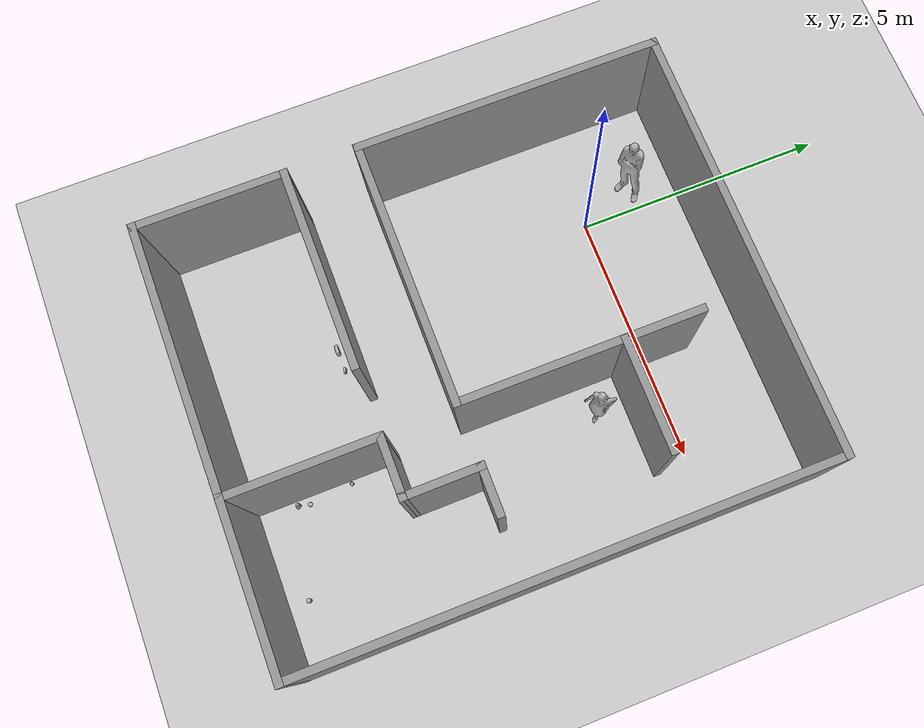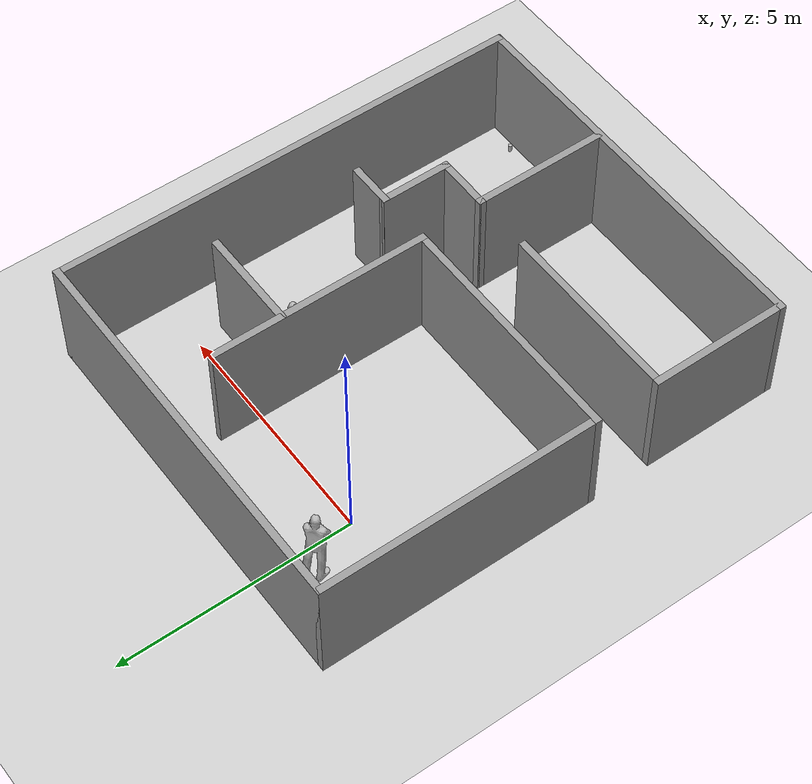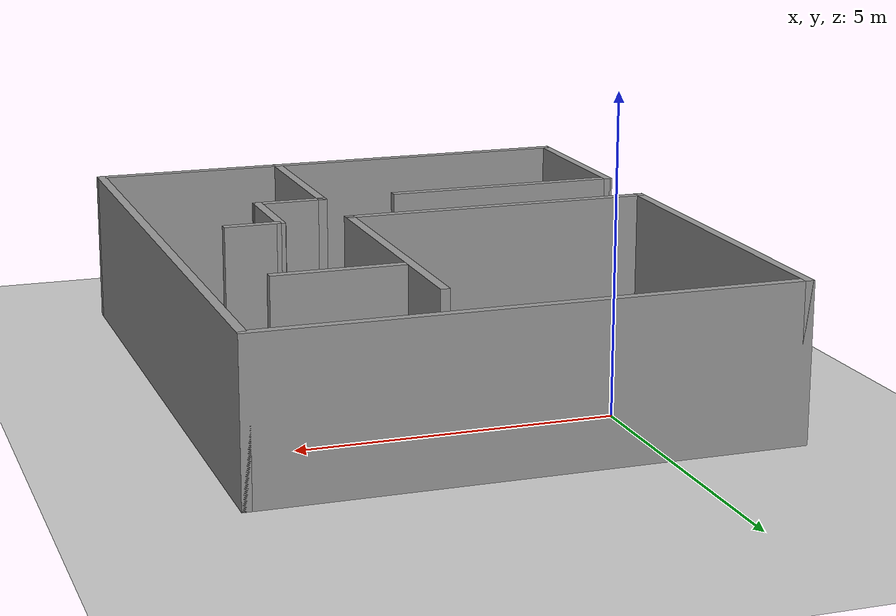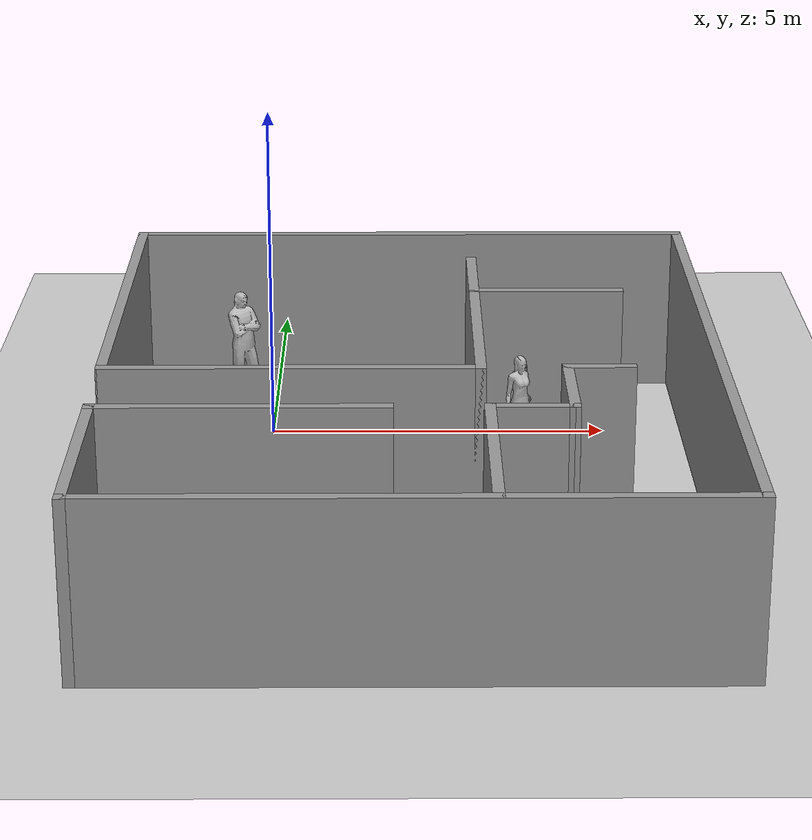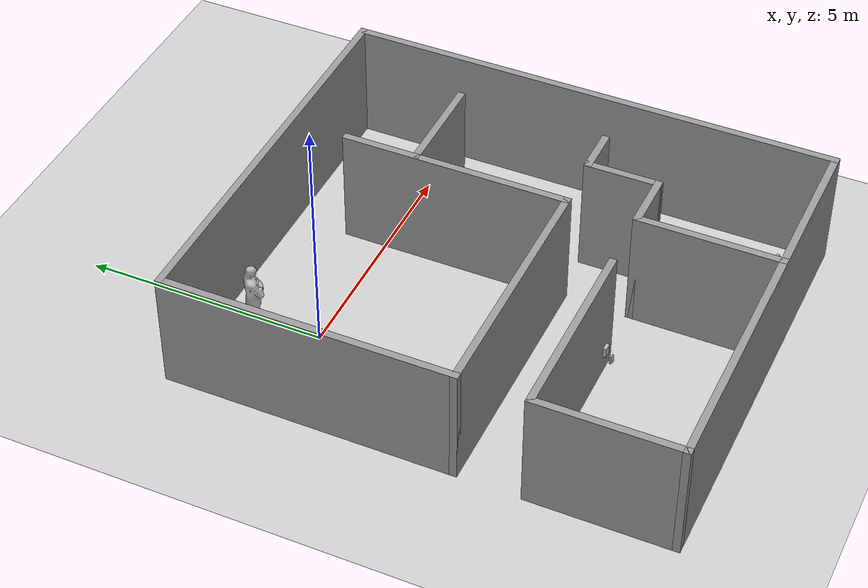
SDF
<sdf version="1.6">
 <world name="default">
  <light name="sun" type="directional">
   <pose>0 0 10 0 -0 0</pose>
   <diffuse>0.8 0.8 0.8 1</diffuse>
   <specular>0.1 0.1 0.1 1</specular>
   <attenuation>
    <range>1000</range>
    <constant>0.9</constant>
    <linear>0.01</linear>
    <quadratic>0.001</quadratic>
   </attenuation>
   <direction>-0.5 0.5 -1</direction>
  </light>
  <model name="ground_plane">
   <static>1</static>
   <link name="link">
    <collision name="collision">
     <geometry><plane><normal>0 0 1</normal><size>100 100</size></plane></geometry>
     <surface><friction><ode><mu>100</mu><mu2>50</mu2></ode></friction></surface>
    </collision>
    <visual name="visual">
     <cast_shadows>0</cast_shadows>
     <geometry><plane><normal>0 0 1</normal><size>100 100</size></plane></geometry>
     <material>
      <script><uri>file://media/materials/scripts/gazebo.material</uri><name>Gazebo/Grey</name></script>
     </material>
    </visual>
   </link>
  </model>
  <gravity>0 0 -9.8</gravity>
  <magnetic_field>6e-06 2.3e-05 -4.2e-05</magnetic_field>
  <atmosphere type="adiabatic"/>
  <physics name="default_physics" default="0" type="ode">
   <max_step_size>0.001</max_step_size>
   <real_time_factor>1</real_time_factor>
   <real_time_update_rate>1000</real_time_update_rate>
  </physics>
  <scene><ambient>0.4 0.4 0.4 1</ambient><background>0.7 0.7 0.7 1</background><shadows>1</shadows></scene>
  <spherical_coordinates>
   <surface_model>EARTH_WGS84</surface_model>
   <latitude_deg>0</latitude_deg>
   <longitude_deg>0</longitude_deg>
   <elevation>0</elevation>
   <heading_deg>0</heading_deg>
  </spherical_coordinates>
  <model name="flat_5">
   <pose>2.075 -2.98 0 0 -0 0</pose>
   <link name="Wall_0">
    <collision name="Wall_0_Collision">
     <geometry><box><size>6 0.15 2.5</size></box></geometry>
     <pose>0 0 1.25 0 -0 0</pose>
    </collision>
    <visual name="Wall_0_Visual">
     <pose>0 0 1.25 0 -0 0</pose>
     <geometry><box><size>6 0.15 2.5</size></box></geometry>
     <material>
      <script><uri>file://media/materials/scripts/gazebo.material</uri><name>Gazebo/Grey</name></script>
      <ambient>1 1 1 1</ambient>
     </material>
    </visual>
    <pose>-4.175 2.125 0 0 -0 1.5708</pose>
   </link>
   <link name="Wall_11">
    <collision name="Wall_11_Collision">
     <geometry><box><size>3 0.15 2.5</size></box></geometry>
     <pose>0 0 1.25 0 -0 0</pose>
    </collision>
    <visual name="Wall_11_Visual">
     <pose>0 0 1.25 0 -0 0</pose>
     <geometry><box><size>3 0.15 2.5</size></box></geometry>
     <material>
      <script><uri>file://media/materials/scripts/gazebo.material</uri><name>Gazebo/Grey</name></script>
      <ambient>1 1 1 1</ambient>
     </material>
    </visual>
    <pose>0.997945 -3.62329 0 0 -0 1.5708</pose>
   </link>
   <link name="Wall_13">
    <collision name="Wall_13_Collision">
     <geometry><box><size>5.25 0.15 2.5</size></box></geometry>
     <pose>0 0 1.25 0 -0 0</pose>
    </collision>
    <visual name="Wall_13_Visual">
     <pose>0 0 1.25 0 -0 0</pose>
     <geometry><box><size>5.25 0.15 2.5</size></box></geometry>
     <material>
      <script><uri>file://media/materials/scripts/gazebo.material</uri><name>Gazebo/Grey</name></script>
      <ambient>1 1 1 1</ambient>
     </material>
    </visual>
    <pose>-1.625 -0.8 0 0 -0 0</pose>
   </link>
   <link name="Wall_14">
    <collision name="Wall_14_Collision">
     <geometry><box><size>4.75 0.15 2.5</size></box></geometry>
     <pose>0 0 1.25 0 -0 0</pose>
    </collision>
    <visual name="Wall_14_Visual">
     <pose>0 0 1.25 0 -0 0</pose>
     <geometry><box><size>4.75 0.15 2.5</size></box></geometry>
     <material>
      <script><uri>file://media/materials/scripts/gazebo.material</uri><name>Gazebo/Grey</name></script>
      <ambient>1 1 1 1</ambient>
     </material>
    </visual>
    <pose>0.925 1.5 0 0 -0 1.5708</pose>
   </link>
   <link name="Wall_16">
    <collision name="Wall_16_Collision">
     <geometry><box><size>2.25 0.15 2.5</size></box></geometry>
     <pose>0 0 1.25 0 -0 0</pose>
    </collision>
    <visual name="Wall_16_Visual">
     <pose>0 0 1.25 0 -0 0</pose>
     <geometry><box><size>2.25 0.15 2.5</size></box></geometry>
     <material>
      <script><uri>file://media/materials/scripts/gazebo.material</uri><name>Gazebo/Grey</name></script>
      <ambient>1 1 1 1</ambient>
     </material>
    </visual>
    <pose>1.98224 2.33642 0 0 -0 0</pose>
   </link>
   <link name="Wall_2">
    <collision name="Wall_2_Collision">
     <geometry><box><size>8.5 0.15 2.5</size></box></geometry>
     <pose>0 0 1.25 0 -0 0</pose>
    </collision>
    <visual name="Wall_2_Visual">
     <pose>0 0 1.25 0 -0 0</pose>
     <geometry><box><size>8.5 0.15 2.5</size></box></geometry>
     <material>
      <script><uri>file://media/materials/scripts/gazebo.material</uri><name>Gazebo/Grey</name></script>
      <ambient>1 1 1 1</ambient>
     </material>
    </visual>
    <pose>0 5.05 0 0 -0 0</pose>
   </link>
   <link name="Wall_20">
    <collision name="Wall_20_Collision">
     <geometry><box><size>1.25 0.15 2.5</size></box></geometry>
     <pose>0 0 1.25 0 -0 0</pose>
    </collision>
    <visual name="Wall_20_Visual">
     <pose>0 0 1.25 0 -0 0</pose>
     <geometry><box><size>1.25 0.15 2.5</size></box></geometry>
     <material>
      <script><uri>file://media/materials/scripts/gazebo.material</uri><name>Gazebo/Grey</name></script>
      <ambient>1 1 1 1</ambient>
     </material>
    </visual>
    <pose>1.54794 -2.19829 0 0 -0 0</pose>
   </link>
   <link name="Wall_21">
    <collision name="Wall_21_Collision">
     <geometry><box><size>1.56716 0.15 2.5</size></box></geometry>
     <pose>0 0 1.25 0 -0 0</pose>
    </collision>
    <visual name="Wall_21_Visual">
     <pose>0 0 1.25 0 -0 0</pose>
     <geometry><box><size>1.56716 0.15 2.5</size></box></geometry>
     <material>
      <script><uri>file://media/materials/scripts/gazebo.material</uri><name>Gazebo/Grey</name></script>
      <ambient>1 1 1 1</ambient>
     </material>
    </visual>
    <pose>2.09543 -1.48972 0 0 -0 1.57435</pose>
   </link>
   <link name="Wall_22">
    <collision name="Wall_22_Collision">
     <geometry><box><size>1 0.15 2.5</size></box></geometry>
     <pose>0 0 1.25 0 -0 0</pose>
    </collision>
    <visual name="Wall_22_Visual">
     <pose>0 0 1.25 0 -0 0</pose>
     <geometry><box><size>1 0.15 2.5</size></box></geometry>
     <material>
      <script><uri>file://media/materials/scripts/gazebo.material</uri><name>Gazebo/Grey</name></script>
      <ambient>1 1 1 1</ambient>
     </material>
    </visual>
    <pose>2.52363 -0.781148 0 0 -0 0</pose>
   </link>
   <link name="Wall_3">
    <collision name="Wall_3_Collision">
     <geometry><box><size>10.25 0.15 2.5</size></box></geometry>
     <pose>0 0 1.25 0 -0 0</pose>
    </collision>
    <visual name="Wall_3_Visual">
     <pose>0 0 1.25 0 -0 0</pose>
     <geometry><box><size>10.25 0.15 2.5</size></box></geometry>
     <material>
      <script><uri>file://media/materials/scripts/gazebo.material</uri><name>Gazebo/Grey</name></script>
      <ambient>1 1 1 1</ambient>
     </material>
    </visual>
    <pose>4.175 0 0 0 0 -1.5708</pose>
   </link>
   <link name="Wall_5">
    <collision name="Wall_5_Collision">
     <geometry><box><size>8.5 0.15 2.5</size></box></geometry>
     <pose>0 0 1.25 0 -0 0</pose>
    </collision>
    <visual name="Wall_5_Visual">
     <pose>0 0 1.25 0 -0 0</pose>
     <geometry><box><size>8.5 0.15 2.5</size></box></geometry>
     <material>
      <script><uri>file://media/materials/scripts/gazebo.material</uri><name>Gazebo/Grey</name></script>
      <ambient>1 1 1 1</ambient>
     </material>
    </visual>
    <pose>0 -5.05 0 0 -0 3.14159</pose>
   </link>
   <link name="Wall_6">
    <collision name="Wall_6_Collision">
     <geometry><box><size>3 0.15 2.5</size></box></geometry>
     <pose>0 0 1.25 0 -0 0</pose>
    </collision>
    <visual name="Wall_6_Visual">
     <pose>0 0 1.25 0 -0 0</pose>
     <geometry><box><size>3 0.15 2.5</size></box></geometry>
     <material>
      <script><uri>file://media/materials/scripts/gazebo.material</uri><name>Gazebo/Grey</name></script>
      <ambient>1 1 1 1</ambient>
     </material>
    </visual>
    <pose>-4.175 -3.625 0 0 -0 1.5708</pose>
   </link>
   <link name="Wall_7">
    <collision name="Wall_7_Collision">
     <geometry><box><size>4 0.15 2.5</size></box></geometry>
     <pose>0 0 1.25 0 -0 0</pose>
    </collision>
    <visual name="Wall_7_Visual">
     <pose>0 0 1.25 0 -0 0</pose>
     <geometry><box><size>4 0.15 2.5</size></box></geometry>
     <material>
      <script><uri>file://media/materials/scripts/gazebo.material</uri><name>Gazebo/Grey</name></script>
      <ambient>1 1 1 1</ambient>
     </material>
    </visual>
    <pose>-2.25 -2.2 0 0 -0 0</pose>
   </link>
   <static>1</static>
  </model>
  <model name="citizen_extras_male_03">
   <static>1</static>
   <link name="link">
    <inertial>
     <mass>20</mass>
     <inertia><ixx>0.0</ixx><ixy>0.0</ixy><ixz>0.0</ixz><iyy>0.0</iyy><iyz>0.0</iyz><izz>0.0</izz></inertia>
    </inertial>
    <collision name="collision">
     <pose>-0.4 1.11 0 0 0 0.74</pose>
     <geometry><mesh><uri>model://citizen_extras_male_03/meshes/mesh.dae</uri></mesh></geometry>
    </collision>
    <visual name="visual">
     <pose>-0.4 1.11 0 0 0 0.74</pose>
     <geometry><mesh><uri>model://citizen_extras_male_03/meshes/mesh.dae</uri></mesh></geometry>
    </visual>
   </link>
  </model>
  <model name="ycb-cracker">
   <link name="link_0">
    <pose>0.96 -5.47 0.95 0 -0 -1.6</pose>
    <inertial>
     <mass>1</mass>
     <inertia>
      <ixx>0.166667</ixx>
      <ixy>0</ixy>
      <ixz>0</ixz>
      <iyy>0.166667</iyy>
      <iyz>0</iyz>
      <izz>0.166667</izz>
     </inertia>
    </inertial>
    <visual name="visual">
     <geometry><mesh><uri>model://ycb-cracker/meshes/textured.dae</uri><scale>1 1 1</scale></mesh></geometry>
    </visual>
    <collision name="collision">
     <geometry><mesh><uri>model://ycb-cracker/meshes/textured.dae</uri></mesh></geometry>
     <surface>
      <friction>
       <ode><mu>1</mu><mu2>1</mu2><fdir1>0 0 0</fdir1><slip1>0</slip1><slip2>0</slip2></ode>
       <torsional>
        <coefficient>1</coefficient>
        <patch_radius>0</patch_radius>
        <surface_radius>0</surface_radius>
        <use_patch_radius>1</use_patch_radius>
        <ode><slip>0</slip></ode>
       </torsional>
      </friction>
      <bounce><restitution_coefficient>0</restitution_coefficient><threshold>1e+06</threshold></bounce>
      <contact>
       <collide_without_contact>0</collide_without_contact>
       <collide_without_contact_bitmask>1</collide_without_contact_bitmask>
       <collide_bitmask>1</collide_bitmask>
       <ode>
        <soft_cfm>0</soft_cfm>
        <soft_erp>0.2</soft_erp>
        <kp>1e+13</kp>
        <kd>1</kd>
        <max_vel>0.01</max_vel>
        <min_depth>0</min_depth>
       </ode>
       <bullet>
        <split_impulse>1</split_impulse>
        <split_impulse_penetration_threshold>-0.01</split_impulse_penetration_threshold>
        <soft_cfm>0</soft_cfm>
        <soft_erp>0.2</soft_erp>
        <kp>1e+13</kp>
        <kd>1</kd>
       </bullet>
      </contact>
     </surface>
    </collision>
   </link>
   <static>1</static>
  </model>
  <model name="ycb-sugar">
   <link name="link_0">
    <pose>1.24 -5.49 0.5 0 -0 -1.85</pose>
    <inertial>
     <mass>1</mass>
     <inertia>
      <ixx>0.166667</ixx>
      <ixy>0</ixy>
      <ixz>0</ixz>
      <iyy>0.166667</iyy>
      <iyz>0</iyz>
      <izz>0.166667</izz>
     </inertia>
    </inertial>
    <visual name="visual">
     <geometry><mesh><uri>model://ycb-sugar/meshes/textured.dae</uri><scale>1 1 1</scale></mesh></geometry>
    </visual>
    <collision name="collision">
     <geometry><mesh><uri>model://ycb-sugar/meshes/textured.dae</uri></mesh></geometry>
     <surface>
      <friction>
       <ode><mu>1</mu><mu2>1</mu2><fdir1>0 0 0</fdir1><slip1>0</slip1><slip2>0</slip2></ode>
       <torsional>
        <coefficient>1</coefficient>
        <patch_radius>0</patch_radius>
        <surface_radius>0</surface_radius>
        <use_patch_radius>1</use_patch_radius>
        <ode><slip>0</slip></ode>
       </torsional>
      </friction>
      <bounce><restitution_coefficient>0</restitution_coefficient><threshold>1e+06</threshold></bounce>
      <contact>
       <collide_without_contact>0</collide_without_contact>
       <collide_without_contact_bitmask>1</collide_without_contact_bitmask>
       <collide_bitmask>1</collide_bitmask>
       <ode>
        <soft_cfm>0</soft_cfm>
        <soft_erp>0.2</soft_erp>
        <kp>1e+13</kp>
        <kd>1</kd>
        <max_vel>0.01</max_vel>
        <min_depth>0</min_depth>
       </ode>
       <bullet>
        <split_impulse>1</split_impulse>
        <split_impulse_penetration_threshold>-0.01</split_impulse_penetration_threshold>
        <soft_cfm>0</soft_cfm>
        <soft_erp>0.2</soft_erp>
        <kp>1e+13</kp>
        <kd>1</kd>
       </bullet>
      </contact>
     </surface>
    </collision>
   </link>
   <static>1</static>
  </model>
  <model name="ycb-tuna">
   <link name="link_3">
    <pose>3.41 -6.89 0.508 0 0 0</pose>
    <inertial>
     <mass>1</mass>
     <inertia>
      <ixx>0.166667</ixx>
      <ixy>0</ixy>
      <ixz>0</ixz>
      <iyy>0.166667</iyy>
      <iyz>0</iyz>
      <izz>0.166667</izz>
     </inertia>
    </inertial>
    <visual name="visual">
     <geometry><mesh><uri>model://ycb-tuna/meshes/textured.dae</uri><scale>1 1 1</scale></mesh></geometry>
    </visual>
    <collision name="collision">
     <geometry><mesh><uri>model://ycb-tuna/meshes/textured.dae</uri></mesh></geometry>
     <surface>
      <friction>
       <ode><mu>1</mu><mu2>1</mu2><fdir1>0 0 0</fdir1><slip1>0</slip1><slip2>0</slip2></ode>
       <torsional>
        <coefficient>1</coefficient>
        <patch_radius>0</patch_radius>
        <surface_radius>0</surface_radius>
        <use_patch_radius>1</use_patch_radius>
        <ode><slip>0</slip></ode>
       </torsional>
      </friction>
      <bounce><restitution_coefficient>0</restitution_coefficient><threshold>1e+06</threshold></bounce>
      <contact>
       <collide_without_contact>0</collide_without_contact>
       <collide_without_contact_bitmask>1</collide_without_contact_bitmask>
       <collide_bitmask>1</collide_bitmask>
       <ode>
        <soft_cfm>0</soft_cfm>
        <soft_erp>0.2</soft_erp>
        <kp>1e+13</kp>
        <kd>1</kd>
        <max_vel>0.01</max_vel>
        <min_depth>0</min_depth>
       </ode>
       <bullet>
        <split_impulse>1</split_impulse>
        <split_impulse_penetration_threshold>-0.01</split_impulse_penetration_threshold>
        <soft_cfm>0</soft_cfm>
        <soft_erp>0.2</soft_erp>
        <kp>1e+13</kp>
        <kd>1</kd>
       </bullet>
      </contact>
     </surface>
    </collision>
   </link>
   <static>1</static>
  </model>
  <model name="ycb-bleach">
   <link name="link_8">
    <pose>3.42 -7.03 0.952 0 -0 2.2</pose>
    <inertial>
     <mass>1</mass>
     <inertia>
      <ixx>0.166667</ixx>
      <ixy>0</ixy>
      <ixz>0</ixz>
      <iyy>0.166667</iyy>
      <iyz>0</iyz>
      <izz>0.166667</izz>
     </inertia>
    </inertial>
    <visual name="visual">
     <geometry><mesh><uri>model://ycb-bleach/meshes/textured.dae</uri><scale>1 1 1</scale></mesh></geometry>
    </visual>
    <collision name="collision">
     <geometry><mesh><uri>/model://ycb-bleach/meshes/textured.dae</uri></mesh></geometry>
     <surface>
      <friction>
       <ode><mu>1</mu><mu2>1</mu2><fdir1>0 0 0</fdir1><slip1>0</slip1><slip2>0</slip2></ode>
       <torsional>
        <coefficient>1</coefficient>
        <patch_radius>0</patch_radius>
        <surface_radius>0</surface_radius>
        <use_patch_radius>1</use_patch_radius>
        <ode><slip>0</slip></ode>
       </torsional>
      </friction>
      <bounce><restitution_coefficient>0</restitution_coefficient><threshold>1e+06</threshold></bounce>
      <contact>
       <collide_without_contact>0</collide_without_contact>
       <collide_without_contact_bitmask>1</collide_without_contact_bitmask>
       <collide_bitmask>1</collide_bitmask>
       <ode>
        <soft_cfm>0</soft_cfm>
        <soft_erp>0.2</soft_erp>
        <kp>1e+13</kp>
        <kd>1</kd>
        <max_vel>0.01</max_vel>
        <min_depth>0</min_depth>
       </ode>
       <bullet>
        <split_impulse>1</split_impulse>
        <split_impulse_penetration_threshold>-0.01</split_impulse_penetration_threshold>
        <soft_cfm>0</soft_cfm>
        <soft_erp>0.2</soft_erp>
        <kp>1e+13</kp>
        <kd>1</kd>
       </bullet>
      </contact>
     </surface>
    </collision>
   </link>
   <static>1</static>
  </model>
  <model name="citizen_extras_female_02">
   <static>1</static>
   <link name="link">
    <inertial>
     <mass>20</mass>
     <inertia><ixx>0.0</ixx><ixy>0.0</ixy><ixz>0.0</ixz><iyy>0.0</iyy><iyz>0.0</iyz><izz>0.0</izz></inertia>
    </inertial>
    <collision name="collision">
     <pose>3.6 -1.26 0 0 0 0.71</pose>
     <geometry><mesh><uri>model://citizen_extras_female_02/meshes/mesh.dae</uri></mesh></geometry>
    </collision>
    <visual name="visual">
     <pose>3.6 -1.26 0 0 0 0.71</pose>
     <geometry><mesh><uri>model://citizen_extras_female_02/meshes/mesh.dae</uri></mesh></geometry>
    </visual>
   </link>
  </model>
  <model name="cocacola">
   <static>1</static>
   <link name="link">
    <inertial>
     <mass>0.25</mass>
     <inertia>
      <ixx>0.000000</ixx>
      <ixy>0.000000</ixy>
      <ixz>0.000000</ixz>
      <iyy>0.000000</iyy>
      <iyz>0.000000</iyz>
      <izz>0.000000</izz>
     </inertia>
    </inertial>
    <collision name="collision">
     <pose>5.04 -7.45 0.73 3.1415 0 0</pose>
     <geometry><cylinder><radius>0.04</radius><length>0.15</length></cylinder></geometry>
    </collision>
    <visual name="visual">
     <pose>5.04 -7.45 0.73 3.1415 0 0</pose>
     <geometry><cylinder><radius>0.04</radius><length>0.15</length></cylinder></geometry>
     <material>
      <script>
       <uri>model://cocacola/material/scripts</uri>
       <uri>model://cocacola/material/textures</uri>
       <name>Custom/cocacola</name>
      </script>
     </material>
    </visual>
    <velocity_decay><linear>0.000000</linear><angular>0.000000</angular></velocity_decay>
   </link>
  </model>
  <model name="ycb-tomatosoup">
   <link name="link_1">
    <pose>3.4 -6.11 0.953 0 -0 0</pose>
    <inertial>
     <mass>1</mass>
     <inertia>
      <ixx>0.166667</ixx>
      <ixy>0</ixy>
      <ixz>0</ixz>
      <iyy>0.166667</iyy>
      <iyz>0</iyz>
      <izz>0.166667</izz>
     </inertia>
    </inertial>
    <visual name="visual">
     <geometry><mesh><uri>model://ycb-tomatosoup/meshes/textured.dae</uri><scale>1 1 1</scale></mesh></geometry>
    </visual>
    <collision name="collision">
     <geometry><mesh><uri>model://ycb-tomatosoup/meshes/textured.dae</uri></mesh></geometry>
     <surface>
      <friction>
       <ode><mu>1</mu><mu2>1</mu2><fdir1>0 0 0</fdir1><slip1>0</slip1><slip2>0</slip2></ode>
       <torsional>
        <coefficient>1</coefficient>
        <patch_radius>0</patch_radius>
        <surface_radius>0</surface_radius>
        <use_patch_radius>1</use_patch_radius>
        <ode><slip>0</slip></ode>
       </torsional>
      </friction>
      <bounce><restitution_coefficient>0</restitution_coefficient><threshold>1e+06</threshold></bounce>
      <contact>
       <collide_without_contact>0</collide_without_contact>
       <collide_without_contact_bitmask>1</collide_without_contact_bitmask>
       <collide_bitmask>1</collide_bitmask>
       <ode>
        <soft_cfm>0</soft_cfm>
        <soft_erp>0.2</soft_erp>
        <kp>1e+13</kp>
        <kd>1</kd>
        <max_vel>0.01</max_vel>
        <min_depth>0</min_depth>
       </ode>
       <bullet>
        <split_impulse>1</split_impulse>
        <split_impulse_penetration_threshold>-0.01</split_impulse_penetration_threshold>
        <soft_cfm>0</soft_cfm>
        <soft_erp>0.2</soft_erp>
        <kp>1e+13</kp>
        <kd>1</kd>
       </bullet>
      </contact>
     </surface>
    </collision>
   </link>
   <static>1</static>
  </model>
 </world>
</sdf>
